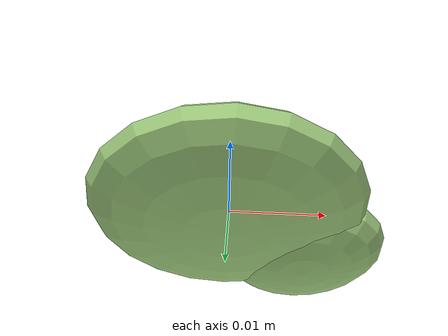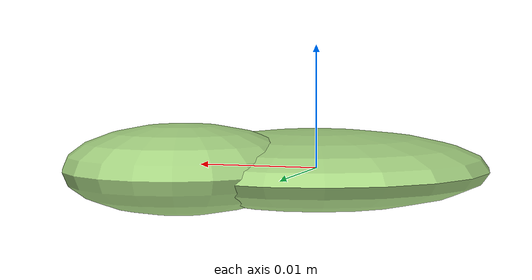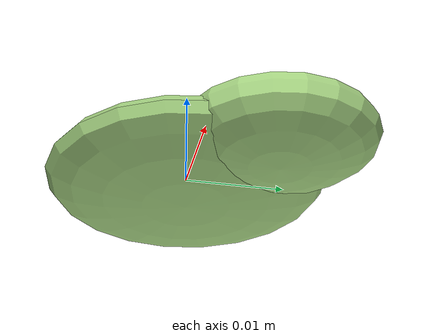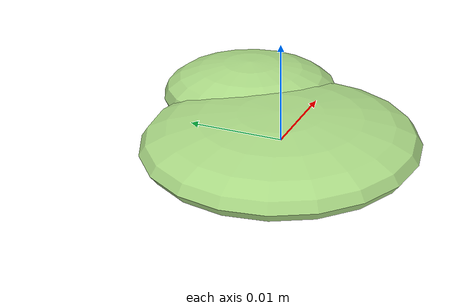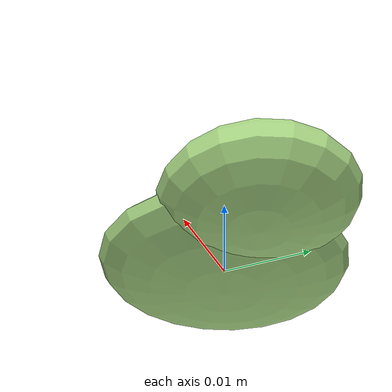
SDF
<?xml version="1.0" ?>
<!-- |    This document was autogenerated by xmacro from data/veggie_template/veggie_base.sdf.xacro  | -->
<!-- |    EDITING THIS FILE BY HAND IS NOT RECOMMENDED                                               | -->
<sdf version="1.8">
	<!-- Parameters -->
	<!-- Base -->
	<!-- Joint 0 -->
	<!-- Link 1 -->
	<!-- Joint 1 -->
	<!-- Link 2 -->
	<!-- Primitives -->
	<!-- All dimensions are half -->
	<!-- Object -->
	<model name="veggie">
		<!-- link0 -->
		<link name="link0">
			<inertial>
				<mass>0.002549350245877594</mass>
				<inertia>
					<ixx>1.041933877540279e-07</ixx>
					<ixy>0</ixy>
					<ixz>0</ixz>
					<iyy>1.0658622464981651e-07</iyy>
					<iyz>0</iyz>
					<izz>2.0106224278492344e-07</izz>
				</inertia>
			</inertial>
			<visual name="link0_visual">
				<pose>0 0 0 0 0 0</pose>
				<geometry>
					<ellipsoid>
						<radii>0.01412503459564226 0.01395792138775544 0.003086950124025584</radii>
					</ellipsoid>
				</geometry>
				<material>
					<ambient>0.659 0.839 0.514 1</ambient>
					<diffuse>0.659 0.839 0.514 1</diffuse>
					<specular>0 0 0 0</specular>
					<emissive>0 0 0 1</emissive>
				</material>
			</visual>
			<collision name="link0_collision">
				<pose>0 0 0 0 0 0 </pose>
				<geometry>
					<ellipsoid>
						<radii>0.01412503459564226 0.01395792138775544 0.003086950124025584</radii>
					</ellipsoid>
				</geometry>
			</collision>
		</link>
		<!-- link1 -->
		<joint name="joint0" type="fixed">
			<pose relative_to="link0">0.008826433646998198 0.00718520623406945 0.0004240278335081071 0.0 0.0 0.0</pose>
			<parent>link0</parent>
			<child>link1</child>
		</joint>
		<link name="link1">
			<pose relative_to="joint0">0 0 0 0 0 0</pose>
			<inertial>
				<mass>0.0013120795141050821</mass>
				<inertia>
					<ixx>2.7685720546493082e-08</ixx>
					<ixy>0</ixy>
					<ixz>0</ixz>
					<iyy>2.5764883295822622e-08</iyy>
					<iyz>0</iyz>
					<izz>4.7025913311365264e-08</izz>
				</inertia>
			</inertial>
			<visual name="link1_visual">
				<pose>0 0 0 0 0 0</pose>
				<geometry>
					<ellipsoid>
						<radii>0.009270488867175668 0.009657214097730772 0.0034987751516644236</radii>
					</ellipsoid>
				</geometry>
				<material>
					<ambient>0.659 0.839 0.514 1</ambient>
					<diffuse>0.659 0.839 0.514 1</diffuse>
					<specular>0 0 0 0</specular>
					<emissive>0 0 0 1</emissive>
				</material>
			</visual>
			<collision name="link1_collision">
				<pose>0 0 0 0 0 0 </pose>
				<geometry>
					<ellipsoid>
						<radii>0.009270488867175668 0.009657214097730772 0.0034987751516644236</radii>
					</ellipsoid>
				</geometry>
			</collision>
		</link>
		<!-- link2 -->
	</model>
</sdf>
